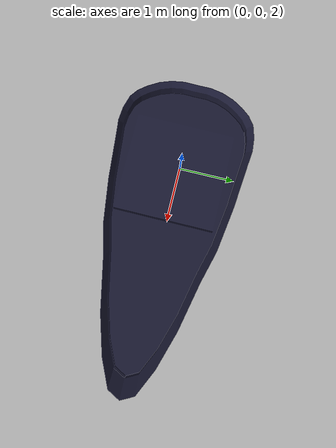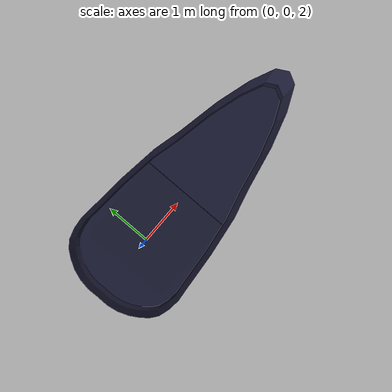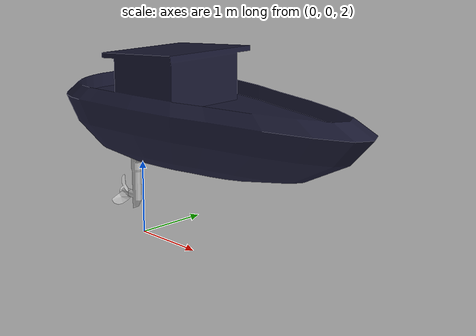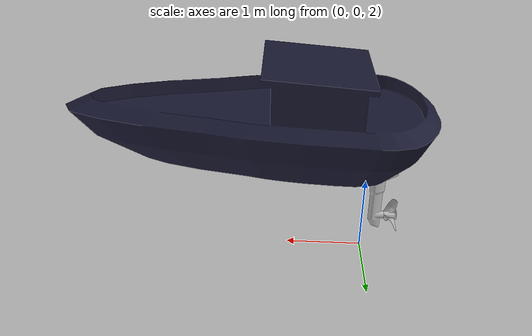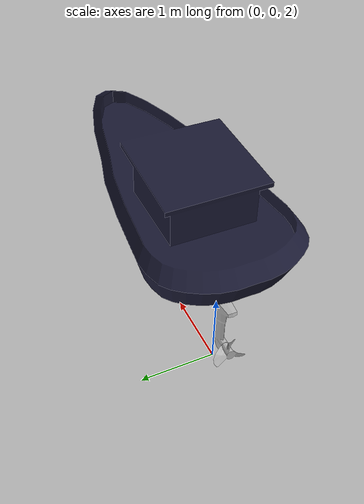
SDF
<?xml version="1.0" ?>
<sdf version="1.6">
    <world name="waves_test">
        <plugin
                filename="gz-sim-physics-system"
                name="gz::sim::systems::Physics">
        </plugin>
        <plugin
                filename="gz-sim-user-commands-system"
                name="gz::sim::systems::UserCommands">
        </plugin>
        <plugin
                filename="gz-sim-scene-broadcaster-system"
                name="gz::sim::systems::SceneBroadcaster">
        </plugin>
        <plugin filename="gz-sim-sensors-system"
                name="gz::sim::systems::Sensors">
            <render_engine>ogre2</render_engine>
            <background_color>0.8 0.8 0.8</background_color>
        </plugin>
        <plugin filename="gz-sim-imu-system"
                name="gz::sim::systems::Imu">
        </plugin>

        <!-- Load the plugin for the wind -->
        <plugin
                filename="gz-sim-wind-effects-system"
                name="gz::sim::systems::WindEffects">
            <force_approximation_scaling_factor>
                <!-- No wind below sea surface -->
                <when zlt="-1">0</when>
                <!-- NOTE(hidmic): enable wind forces slightly
                     below sea surface for the partially submerged
                     vehicle hull to be affected by them -->
                <when zge="-1">1</when>
            </force_approximation_scaling_factor>
            <horizontal>
                <magnitude>
                    <time_for_rise>5</time_for_rise>
                    <sin>
                        <amplitude_percent>0.05</amplitude_percent>
                        <period>20</period>
                    </sin>
                    <noise type="gaussian">
                        <mean>0</mean>
                        <stddev>0.0002</stddev>
                    </noise>
                </magnitude>
                <direction>
                    <time_for_rise>5</time_for_rise>
                    <sin>
                        <amplitude>5</amplitude>
                        <period>10</period>
                    </sin>
                    <noise type="gaussian">
                        <mean>0</mean>
                        <stddev>0.03</stddev>
                    </noise>
                </direction>
            </horizontal>
            <vertical>
                <noise type="gaussian">
                    <mean>0</mean>
                    <stddev>0.03</stddev>
                </noise>
            </vertical>
        </plugin>

        <wind>
            <linear_velocity>0 0 0</linear_velocity>
        </wind>

<!--                name="gz::sim::systems::ApplyLinkWrench">-->

        <scene>
            <ambient>1.0 1.0 1.0</ambient>
            <background>0.8 0.8 0.8</background>
            <sky></sky>
        </scene>

        <light type="directional" name="sun">
            <cast_shadows>true</cast_shadows>
            <pose>0 0 10 0 0 0</pose>
            <diffuse>0.8 0.8 0.8 1</diffuse>
            <specular>0.6 0.6 0.6 1</specular>
            <direction>-0.5 0.1 -0.9</direction>
        </light>

        <include>
            <pose>0 0 0 0 0 0</pose>
            <uri>model://waves</uri>
        </include>

        <include>
            <pose>0 0 4 0 0 0</pose>
            <uri>model://boat</uri>
        </include>

    </world>
</sdf>

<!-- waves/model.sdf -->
<sdf version="1.6">
  <model name="waves">
    <static>true</static>
    <link name="link">
      <visual name= "wave_visual">
        <geometry>
          <mesh>
            <uri>meshes/mesh.dae</uri>
          </mesh>
        </geometry>
        <plugin
            filename="libWaveVisual.so"
            name="ignition::gazebo::systems::WaveVisual">
          <shader>
            <vertex>materials/programs/GerstnerWaves_vs_330.glsl</vertex>
            <fragment>materials/programs/GerstnerWaves_fs_330.glsl</fragment>
          </shader>
          <wavefield>
            <size>1000 1000</size>
            <cell_count>50 50</cell_count>
            <wave>
              <model>PMS</model>
              <period>5</period>
              <number>3</number>
              <scale>5.1</scale>
              <gain>0.3</gain>
              <direction>1 0</direction>
              <angle>0.4</angle>
              <tau>2.0</tau>
              <amplitude>0.0</amplitude>
              <steepness>0.0</steepness>
            </wave>
          </wavefield>
        </plugin>
        <visibility_flags>8</visibility_flags>
      </visual>
    </link>
  </model>
</sdf>

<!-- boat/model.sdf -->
<sdf version="1.6">
    <model name='boat'>
        <enable_wind>true</enable_wind>
        <plugin filename="ModelPush" name="model_push::ModelPush">
            <link_name>boat_body</link_name>
        </plugin>

        <link name='boat_body'>
            <inertial>
                <pose>0.999251 0.000005 -1.223034 0 0 0</pose>
                <mass>1610</mass>
                <inertia>
                    <ixx>1.325642e+2</ixx>
                    <ixy>-0.000002e+2</ixy>
                    <ixz>0.121894e+2</ixz>
                    <iyy>4.792929e+2</iyy>
                    <iyz>0.000095e+2</iyz>
                    <izz>5.052444e+2</izz>
                </inertia>

            </inertial>

            <visual name='boat_visual'>
                <geometry>
                    <mesh>
                        <uri>model://boat/meshes/boat3.dae</uri>
                    </mesh>
                </geometry>
                <material>
                    <ambient>0.1 0.1 0.1 1</ambient>
                    <diffuse>0.1 0.1 0.2 1</diffuse>
                    <specular>0 0 0 0</specular>
                    <emissive>0 0 0 1</emissive>
                </material>
            </visual>
            <collision name='boat_collision'>
                <geometry>
                    <mesh>
                        <uri>model://boat/meshes/boat3.stl</uri>
                    </mesh>
                </geometry>
            </collision>
        </link>

        <link name="engine_link">
            <pose>0 0 -1 0 0 0</pose>
            <visual name="visual">
                <geometry>
                    <mesh>
                        <uri>model://wam-v/meshes/engine.dae</uri>
                    </mesh>
                </geometry>
            </visual>
            <collision name="engine_vertical_axis_collision">
                <pose>-0.16 0 -0.215 0 0 0</pose>
                <geometry>
                    <box>
                        <size>0.2 0.1 0.83</size>
                    </box>
                </geometry>
            </collision>
            <collision name="engine_rear_end_collision">
                <pose>-0.34 0 0.12 0 0 0</pose>
                <geometry>
                    <box>
                        <size>0.12 0.15 0.12</size>
                    </box>
                </geometry>
            </collision>
            <inertial>
                <mass>15</mass>
                <inertia>
                    <ixx>0.88924</ixx>
                    <ixy>0</ixy>
                    <iyy>0.911125</iyy>
                    <iyz>0</iyz>
                    <izz>0.078125</izz>
                </inertia>
            </inertial>
        </link>
        <joint name="engine_joint" type="revolute">
            <parent>boat_body</parent>
            <child>engine_link</child>
            <axis>
                <xyz>0 0 1</xyz>
                <limit>
                    <lower>0</lower>
                    <upper>0</upper>
                </limit>
                <dynamics>
                    <damping>0.05</damping>
                </dynamics>
            </axis>
        </joint>

        <link name="propeller_link">
            <pose relative_to="propeller_joint">0 0 0 0 0 0</pose>
            <visual name="visual">
                <geometry>
                    <mesh>
                        <uri>model://wam-v/meshes/propeller.dae</uri>
                    </mesh>
                </geometry>
            </visual>
            <collision name="collision">
                <pose>-0.11 0 0 0 1.570796 0</pose>
                <geometry>
                    <cylinder>
                        <length>0.08</length>
                        <radius>0.24</radius>
                    </cylinder>
                </geometry>
            </collision>
            <inertial>
                <mass>0.5</mass>
                <inertia>
                    <ixx>0.008545</ixx>
                    <ixy>0</ixy>
                    <iyy>0.008545</iyy>
                    <iyz>0</iyz>
                    <izz>0.0144</izz>
                </inertia>
            </inertial>
        </link>
        <joint name="propeller_joint" type="revolute">
            <pose relative_to="engine_link">-0.278156 0 -0.509371 0 0 0</pose>
            <parent>engine_link</parent>
            <child>propeller_link</child>
            <axis>
                <xyz>1 0 0</xyz>
                <dynamics>
                    <damping>0.01</damping>
                </dynamics>
                <limit>
                    <lower>-1e+16</lower>
                    <upper>1e+16</upper>
                </limit>
            </axis>
        </joint>

        <plugin filename="gz-sim-joint-state-publisher-system"
                name="gz::sim::systems::JointStatePublisher">
        </plugin>
        <plugin filename="gz-sim-apply-joint-force-system"
                name="gz::sim::systems::ApplyJointForce">
            <joint_name>engine_joint</joint_name>
        </plugin>

        <!-- Thruster plugins -->
        <plugin
                filename="gz-sim-thruster-system"
                name="gz::sim::systems::Thruster">
            <namespace>boat</namespace>
            <joint_name>propeller_joint</joint_name>
            <use_angvel_cmd>0</use_angvel_cmd>
            <fluid_density>1000</fluid_density>
            <propeller_diameter>0.48</propeller_diameter>
            <thrust_coefficient>0.01</thrust_coefficient>
            <velocity_control>1</velocity_control>
            <max_thrust_cmd>10000.0</max_thrust_cmd>
            <min_thrust_cmd>-10000.0</min_thrust_cmd>
        </plugin>

        <!-- Hydrodynamics plugin -->
        <plugin
                filename="gz-waves1-hydrodynamics-system"
                name="gz::sim::systems::Hydrodynamics">

            <enable>boat::boat_body</enable>

            <hydrodynamics>
                <damping_on>1</damping_on>
                <viscous_drag_on>1</viscous_drag_on>
                <pressure_drag_on>1</pressure_drag_on>

                <!-- Linear and Angular Damping -->
                <cDampL1>1.0E-6</cDampL1>
                <cDampL2>1.0E-6</cDampL2>
                <cDampR1>1.0E-6</cDampR1>
                <cDampR2>1.0E-6</cDampR2>

                <!-- 'Pressure' Drag -->
                <cPDrag1>1.0E+2</cPDrag1>
                <cPDrag2>1.0E+2</cPDrag2>
                <fPDrag>0.4</fPDrag>
                <cSDrag1>1.0E+2</cSDrag1>
                <cSDrag2>1.0E+2</cSDrag2>
                <fSDrag>0.4</fSDrag>
                <vRDrag>1.0</vRDrag>
            </hydrodynamics>
        </plugin>

        <!-- ArduPilot plugin -->
        <plugin name="ArduPilotPlugin" filename="ArduPilotPlugin">
            <fdm_addr>127.0.0.1</fdm_addr>
            <fdm_port_in>9002</fdm_port_in>
            <connectionTimeoutMaxCount>5</connectionTimeoutMaxCount>
            <lock_step>1</lock_step>
            <modelXYZToAirplaneXForwardZDown>0 0 0 3.141593 0 0</modelXYZToAirplaneXForwardZDown>
            <gazeboXYZToNED>0 0 0 3.141593 0 1.57079632</gazeboXYZToNED>

            <!--
              SERVO1_FUNCTION 26 (GroundSteering)
            -->
            <control channel="0">
                <jointName>engine_joint</jointName>
                <useForce>1</useForce>
                <multiplier>3.1415926</multiplier>
                <offset>-0.5</offset>
                <servo_min>1000</servo_min>
                <servo_max>2000</servo_max>
                <type>POSITION</type>
                <p_gain>500.0</p_gain>
                <i_gain>0</i_gain>
                <d_gain>10</d_gain>
                <i_max>-1</i_max>
                <i_min>0</i_min>
                <cmd_max>5000.0</cmd_max>
                <cmd_min>-5000.0</cmd_min>
            </control>

            <!--
              SERVO3_FUNCTION 70 (Throttle)

              max thrust: +/- 1500 N (larger than VRX settings of +250 N / -100 N)

            -->
            <control channel="2">
                <jointName>propeller_joint</jointName>
                <useForce>1</useForce>
                <multiplier>3000</multiplier>
                <offset>-0.5</offset>
                <servo_min>1000</servo_min>
                <servo_max>10000</servo_max>
                <type>COMMAND</type>
                <cmd_topic>/model/boat/joint/propeller_joint/cmd_thrust</cmd_topic>
            </control>
        </plugin>

    </model>
</sdf>
